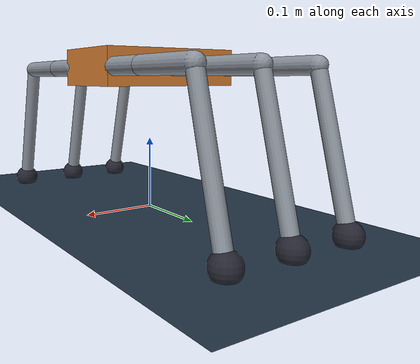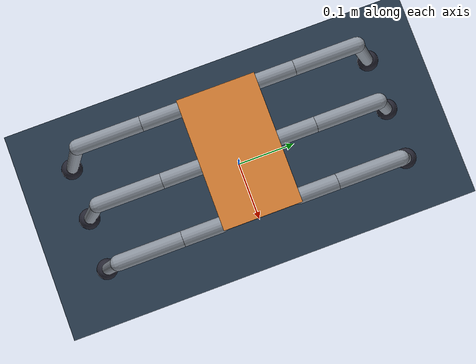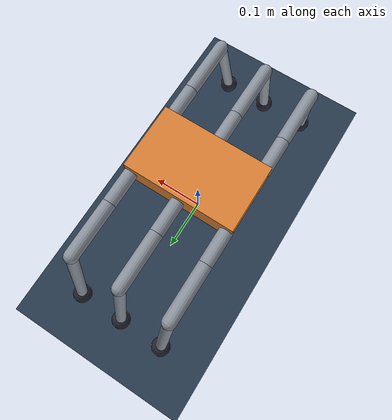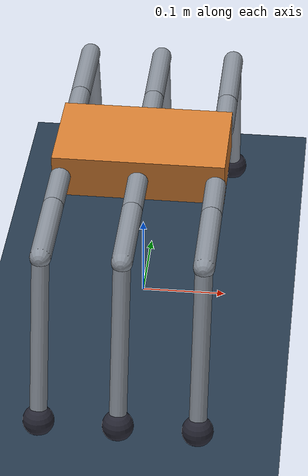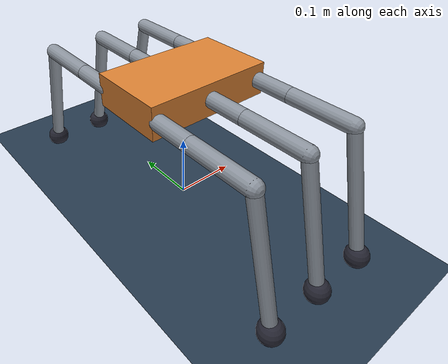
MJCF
<mujoco model="hexapod0">
  <compiler angle="degree" autolimits="true"/>
  <option timestep="0.004" integrator="implicitfast"/>

  <default>
    <geom density="600" friction="1.0 0.5 0.5"/>
    <default class="hexapod">
      <joint type="hinge" armature="0.008" damping="0.4" frictionloss="0.02"/>
      <geom type="capsule" size="0.012" rgba="0.55 0.58 0.62 1"/>
      <position kp="25" kv="2.5" forcerange="-15 15"/>
      <default class="coxa">
        <joint axis="0 0 1" range="-45 45"/>
      </default>
      <default class="femur">
        <joint axis="0 1 0" range="-75 75"/>
      </default>
      <default class="tibia">
        <joint axis="0 1 0" range="-110 30"/>
      </default>
    </default>
  </default>

  <asset>
    <texture type="skybox" builtin="gradient" rgb1="0.3 0.5 0.7" rgb2="0 0 0" width="512" height="512"/>
    <texture name="grid" type="2d" builtin="checker" rgb1="0.2 0.3 0.4" rgb2="0.1 0.15 0.2"
             width="512" height="512"/>
    <material name="grid" texture="grid" texrepeat="10 10" reflectance="0.2"/>
  </asset>

  <worldbody>
    <light pos="0 0 2.0" dir="0 0 -1" diffuse="0.8 0.8 0.8"/>
    <geom name="floor" type="plane" size="0 0 0.05" material="grid"/>

    <body name="trunk" pos="0 0 0.20">
      <freejoint name="root"/>
      <geom name="trunk" type="box" size="0.10 0.06 0.025" rgba="0.85 0.5 0.2 1"/>

      <!-- ===== LEFT legs: rotate leg frame +90 deg about z so local +x -> world +y ===== -->
      <body name="coxa_FL" pos="0.09 0.06 0" euler="0 0 90" childclass="hexapod">
        <joint name="coxa_FL" class="coxa"/>
        <geom fromto="0 0 0 0.06 0 0"/>
        <body name="femur_FL" pos="0.06 0 0">
          <joint name="femur_FL" class="femur"/>
          <geom fromto="0 0 0 0.10 0 0"/>
          <body name="tibia_FL" pos="0.10 0 0">
            <joint name="tibia_FL" class="tibia"/>
            <geom fromto="0 0 0 0.05 0 -0.19" size="0.010"/>
            <geom name="foot_FL" type="sphere" pos="0.05 0 -0.19" size="0.018" rgba="0.15 0.15 0.2 1"/>
            <site name="foot_FL" pos="0.05 0 -0.19" size="0.012"/>
          </body>
        </body>
      </body>

      <body name="coxa_ML" pos="0.0 0.06 0" euler="0 0 90" childclass="hexapod">
        <joint name="coxa_ML" class="coxa"/>
        <geom fromto="0 0 0 0.06 0 0"/>
        <body name="femur_ML" pos="0.06 0 0">
          <joint name="femur_ML" class="femur"/>
          <geom fromto="0 0 0 0.10 0 0"/>
          <body name="tibia_ML" pos="0.10 0 0">
            <joint name="tibia_ML" class="tibia"/>
            <geom fromto="0 0 0 0.05 0 -0.19" size="0.010"/>
            <geom name="foot_ML" type="sphere" pos="0.05 0 -0.19" size="0.018" rgba="0.15 0.15 0.2 1"/>
            <site name="foot_ML" pos="0.05 0 -0.19" size="0.012"/>
          </body>
        </body>
      </body>

      <body name="coxa_BL" pos="-0.09 0.06 0" euler="0 0 90" childclass="hexapod">
        <joint name="coxa_BL" class="coxa"/>
        <geom fromto="0 0 0 0.06 0 0"/>
        <body name="femur_BL" pos="0.06 0 0">
          <joint name="femur_BL" class="femur"/>
          <geom fromto="0 0 0 0.10 0 0"/>
          <body name="tibia_BL" pos="0.10 0 0">
            <joint name="tibia_BL" class="tibia"/>
            <geom fromto="0 0 0 0.05 0 -0.19" size="0.010"/>
            <geom name="foot_BL" type="sphere" pos="0.05 0 -0.19" size="0.018" rgba="0.15 0.15 0.2 1"/>
            <site name="foot_BL" pos="0.05 0 -0.19" size="0.012"/>
          </body>
        </body>
      </body>

      <!-- ===== RIGHT legs: rotate leg frame -90 deg about z so local +x -> world -y ===== -->
      <body name="coxa_FR" pos="0.09 -0.06 0" euler="0 0 -90" childclass="hexapod">
        <joint name="coxa_FR" class="coxa"/>
        <geom fromto="0 0 0 0.06 0 0"/>
        <body name="femur_FR" pos="0.06 0 0">
          <joint name="femur_FR" class="femur"/>
          <geom fromto="0 0 0 0.10 0 0"/>
          <body name="tibia_FR" pos="0.10 0 0">
            <joint name="tibia_FR" class="tibia"/>
            <geom fromto="0 0 0 0.05 0 -0.19" size="0.010"/>
            <geom name="foot_FR" type="sphere" pos="0.05 0 -0.19" size="0.018" rgba="0.15 0.15 0.2 1"/>
            <site name="foot_FR" pos="0.05 0 -0.19" size="0.012"/>
          </body>
        </body>
      </body>

      <body name="coxa_MR" pos="0.0 -0.06 0" euler="0 0 -90" childclass="hexapod">
        <joint name="coxa_MR" class="coxa"/>
        <geom fromto="0 0 0 0.06 0 0"/>
        <body name="femur_MR" pos="0.06 0 0">
          <joint name="femur_MR" class="femur"/>
          <geom fromto="0 0 0 0.10 0 0"/>
          <body name="tibia_MR" pos="0.10 0 0">
            <joint name="tibia_MR" class="tibia"/>
            <geom fromto="0 0 0 0.05 0 -0.19" size="0.010"/>
            <geom name="foot_MR" type="sphere" pos="0.05 0 -0.19" size="0.018" rgba="0.15 0.15 0.2 1"/>
            <site name="foot_MR" pos="0.05 0 -0.19" size="0.012"/>
          </body>
        </body>
      </body>

      <body name="coxa_BR" pos="-0.09 -0.06 0" euler="0 0 -90" childclass="hexapod">
        <joint name="coxa_BR" class="coxa"/>
        <geom fromto="0 0 0 0.06 0 0"/>
        <body name="femur_BR" pos="0.06 0 0">
          <joint name="femur_BR" class="femur"/>
          <geom fromto="0 0 0 0.10 0 0"/>
          <body name="tibia_BR" pos="0.10 0 0">
            <joint name="tibia_BR" class="tibia"/>
            <geom fromto="0 0 0 0.05 0 -0.19" size="0.010"/>
            <geom name="foot_BR" type="sphere" pos="0.05 0 -0.19" size="0.018" rgba="0.15 0.15 0.2 1"/>
            <site name="foot_BR" pos="0.05 0 -0.19" size="0.012"/>
          </body>
        </body>
      </body>
    </body>
  </worldbody>

  <!-- 18 position servos, ordered FL ML BL FR MR BR, each coxa/femur/tibia.
       Targets default to 0 -> holds the splayed standing pose. -->
  <actuator>
    <position name="coxa_FL"  joint="coxa_FL"  class="hexapod"/>
    <position name="femur_FL" joint="femur_FL" class="hexapod"/>
    <position name="tibia_FL" joint="tibia_FL" class="hexapod"/>
    <position name="coxa_ML"  joint="coxa_ML"  class="hexapod"/>
    <position name="femur_ML" joint="femur_ML" class="hexapod"/>
    <position name="tibia_ML" joint="tibia_ML" class="hexapod"/>
    <position name="coxa_BL"  joint="coxa_BL"  class="hexapod"/>
    <position name="femur_BL" joint="femur_BL" class="hexapod"/>
    <position name="tibia_BL" joint="tibia_BL" class="hexapod"/>
    <position name="coxa_FR"  joint="coxa_FR"  class="hexapod"/>
    <position name="femur_FR" joint="femur_FR" class="hexapod"/>
    <position name="tibia_FR" joint="tibia_FR" class="hexapod"/>
    <position name="coxa_MR"  joint="coxa_MR"  class="hexapod"/>
    <position name="femur_MR" joint="femur_MR" class="hexapod"/>
    <position name="tibia_MR" joint="tibia_MR" class="hexapod"/>
    <position name="coxa_BR"  joint="coxa_BR"  class="hexapod"/>
    <position name="femur_BR" joint="femur_BR" class="hexapod"/>
    <position name="tibia_BR" joint="tibia_BR" class="hexapod"/>
  </actuator>
</mujoco>
